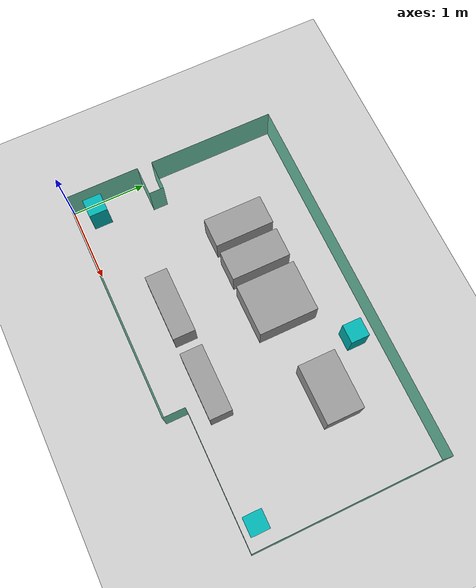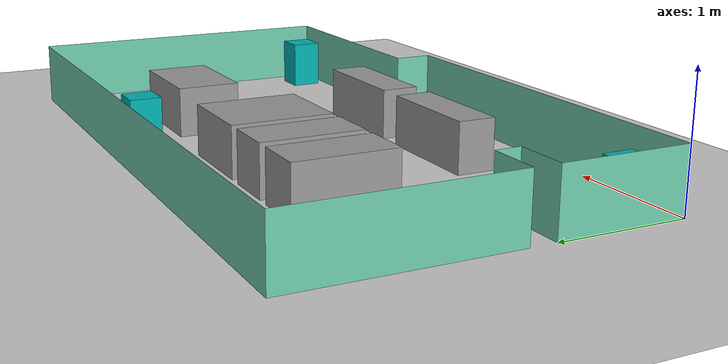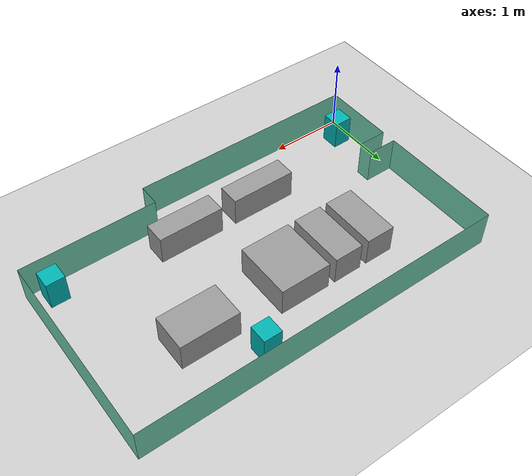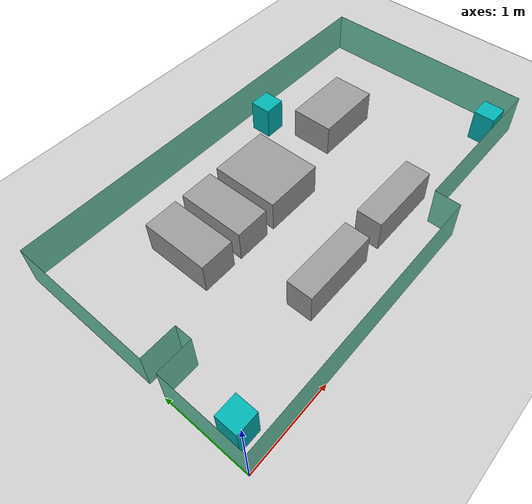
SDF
<sdf version="1.7">
 <world name="default">
  <light name="sun" type="directional">
   <pose>0 0 10 0 -0 0</pose>
   <diffuse>0.8 0.8 0.8 1</diffuse>
   <specular>0.2 0.2 0.2 1</specular>
   <attenuation>
    <range>1000</range>
    <constant>0.9</constant>
    <linear>0.01</linear>
    <quadratic>0.001</quadratic>
   </attenuation>
   <direction>-0.5 0.1 -0.9</direction>
   <spot><inner_angle>0</inner_angle><outer_angle>0</outer_angle><falloff>0</falloff></spot>
  </light>
  <model name="ground_plane">
   <static>1</static>
   <link name="link">
    <collision name="collision">
     <geometry><plane><normal>0 0 1</normal><size>100 100</size></plane></geometry>
     <surface>
      <contact><collide_bitmask>65535</collide_bitmask></contact>
      <friction><ode><mu>100</mu><mu2>50</mu2></ode></friction>
     </surface>
    </collision>
    <visual name="visual">
     <cast_shadows>0</cast_shadows>
     <geometry><plane><normal>0 0 1</normal><size>100 100</size></plane></geometry>
     <material>
      <script><uri>file://media/materials/scripts/gazebo.material</uri><name>Gazebo/Grey</name></script>
     </material>
    </visual>
   </link>
  </model>
  <gravity>0 0 -9.8</gravity>
  <magnetic_field>6e-06 2.3e-05 -4.2e-05</magnetic_field>
  <atmosphere type="adiabatic"/>
  <physics type="ode">
   <max_step_size>0.001</max_step_size>
   <real_time_factor>1</real_time_factor>
   <real_time_update_rate>1000</real_time_update_rate>
  </physics>
  <scene><ambient>0.4 0.4 0.4 1</ambient><background>0.7 0.7 0.7 1</background><shadows>1</shadows></scene>
  <spherical_coordinates>
   <surface_model>EARTH_WGS84</surface_model>
   <latitude_deg>0</latitude_deg>
   <longitude_deg>0</longitude_deg>
   <elevation>0</elevation>
   <heading_deg>0</heading_deg>
  </spherical_coordinates>
  <model name="model_build_fin4">
   <pose>2.5 1.45 0 0 -0 0</pose>
   <link name="Wall_0">
    <collision name="Wall_0_Collision">
     <geometry><box><size>3.15 0 0.5</size></box></geometry>
     <pose>0 0 0.25 0 -0 0</pose>
    </collision>
    <visual name="Wall_0_Visual">
     <pose>0 0 0.25 0 -0 0</pose>
     <geometry><box><size>3.15 0 0.5</size></box></geometry>
     <material>
      <script><uri>file://media/materials/scripts/gazebo.material</uri><name>Gazebo/Grey</name></script>
      <ambient>0.435294 0.796078 0.67451 1</ambient>
     </material>
     <meta><layer>0</layer></meta>
    </visual>
    <pose>-0.925 -1.45 0 0 -0 0</pose>
   </link>
   <link name="Wall_1">
    <collision name="Wall_1_Collision">
     <geometry><box><size>0.3 0 0.5</size></box></geometry>
     <pose>0 0 0.25 0 -0 0</pose>
    </collision>
    <visual name="Wall_1_Visual">
     <pose>0 0 0.25 0 -0 0</pose>
     <geometry><box><size>0.3 0 0.5</size></box></geometry>
     <material>
      <script><uri>file://media/materials/scripts/gazebo.material</uri><name>Gazebo/Grey</name></script>
      <ambient>0.435294 0.796078 0.67451 1</ambient>
     </material>
     <meta><layer>0</layer></meta>
    </visual>
    <pose>0.65 -1.3 0 0 -0 1.5708</pose>
   </link>
   <link name="Wall_2">
    <collision name="Wall_2_Collision">
     <geometry><box><size>1.85 0 0.5</size></box></geometry>
     <pose>0 0 0.25 0 -0 0</pose>
    </collision>
    <visual name="Wall_2_Visual">
     <pose>0 0 0.25 0 -0 0</pose>
     <geometry><box><size>1.85 0 0.5</size></box></geometry>
     <material>
      <script><uri>file://media/materials/scripts/gazebo.material</uri><name>Gazebo/Grey</name></script>
      <ambient>0.435294 0.796078 0.67451 1</ambient>
     </material>
     <meta><layer>0</layer></meta>
    </visual>
    <pose>1.575 -1.15 0 0 -0 0</pose>
   </link>
   <link name="Wall_3">
    <collision name="Wall_3_Collision">
     <geometry><box><size>2.6 0 0.5</size></box></geometry>
     <pose>0 0 0.25 0 -0 0</pose>
    </collision>
    <visual name="Wall_3_Visual">
     <pose>0 0 0.25 0 -0 0</pose>
     <geometry><box><size>2.6 0 0.5</size></box></geometry>
     <material>
      <script><uri>file://media/materials/scripts/gazebo.material</uri><name>Gazebo/Grey</name></script>
      <ambient>0.435294 0.796078 0.67451 1</ambient>
     </material>
     <meta><layer>0</layer></meta>
    </visual>
    <pose>2.5 0.15 0 0 -0 1.5708</pose>
   </link>
   <link name="Wall_4">
    <collision name="Wall_4_Collision">
     <geometry><box><size>5 0 0.5</size></box></geometry>
     <pose>0 0 0.25 0 -0 0</pose>
    </collision>
    <visual name="Wall_4_Visual">
     <pose>0 0 0.25 0 -0 0</pose>
     <geometry><box><size>5 0 0.5</size></box></geometry>
     <material>
      <script><uri>file://media/materials/scripts/gazebo.material</uri><name>Gazebo/Grey</name></script>
      <ambient>0.435294 0.796078 0.67451 1</ambient>
     </material>
     <meta><layer>0</layer></meta>
    </visual>
    <pose>0 1.45 0 0 -0 3.14159</pose>
   </link>
   <link name="Wall_5">
    <collision name="Wall_5_Collision">
     <geometry><box><size>1.7 0 0.5</size></box></geometry>
     <pose>0 0 0.25 0 -0 0</pose>
    </collision>
    <visual name="Wall_5_Visual">
     <pose>0 0 0.25 0 -0 0</pose>
     <geometry><box><size>1.7 0 0.5</size></box></geometry>
     <material>
      <script><uri>file://media/materials/scripts/gazebo.material</uri><name>Gazebo/Grey</name></script>
      <ambient>0.435294 0.796078 0.67451 1</ambient>
     </material>
     <meta><layer>0</layer></meta>
    </visual>
    <pose>-2.5 0.6 0 0 -0 -1.5708</pose>
   </link>
   <link name="Wall_6">
    <collision name="Wall_6_Collision">
     <geometry><box><size>0.4 0 0.5</size></box></geometry>
     <pose>0 0 0.25 0 -0 0</pose>
    </collision>
    <visual name="Wall_6_Visual">
     <pose>0 0 0.25 0 -0 0</pose>
     <geometry><box><size>0.4 0 0.5</size></box></geometry>
     <material>
      <script><uri>file://media/materials/scripts/gazebo.material</uri><name>Gazebo/Grey</name></script>
      <ambient>0.435294 0.796078 0.67451 1</ambient>
     </material>
     <meta><layer>0</layer></meta>
    </visual>
    <pose>-2.3 -0.25 0 0 -0 0</pose>
   </link>
   <link name="Wall_7">
    <collision name="Wall_7_Collision">
     <geometry><box><size>0.2 0 0.5</size></box></geometry>
     <pose>0 0 0.25 0 -0 0</pose>
    </collision>
    <visual name="Wall_7_Visual">
     <pose>0 0 0.25 0 -0 0</pose>
     <geometry><box><size>0.2 0 0.5</size></box></geometry>
     <material>
      <script><uri>file://media/materials/scripts/gazebo.material</uri><name>Gazebo/Grey</name></script>
      <ambient>0.435294 0.796078 0.67451 1</ambient>
     </material>
     <meta><layer>0</layer></meta>
    </visual>
    <pose>-2.1 -0.35 0 0 -0 -1.5708</pose>
   </link>
   <link name="Wall_8">
    <collision name="Wall_8_Collision">
     <geometry><box><size>0.4 0 0.5</size></box></geometry>
     <pose>0 0 0.25 0 -0 0</pose>
    </collision>
    <visual name="Wall_8_Visual">
     <pose>0 0 0.25 0 -0 0</pose>
     <geometry><box><size>0.4 0 0.5</size></box></geometry>
     <material>
      <script><uri>file://media/materials/scripts/gazebo.material</uri><name>Gazebo/Grey</name></script>
      <ambient>0.435294 0.796078 0.67451 1</ambient>
     </material>
     <meta><layer>0</layer></meta>
    </visual>
    <pose>-2.3 -0.45 0 0 -0 3.14159</pose>
   </link>
   <link name="Wall_9">
    <collision name="Wall_9_Collision">
     <geometry><box><size>1 0 0.5</size></box></geometry>
     <pose>0 0 0.25 0 -0 0</pose>
    </collision>
    <visual name="Wall_9_Visual">
     <pose>0 0 0.25 0 -0 0</pose>
     <geometry><box><size>1 0 0.5</size></box></geometry>
     <material>
      <script><uri>file://media/materials/scripts/gazebo.material</uri><name>Gazebo/Grey</name></script>
      <ambient>0.435294 0.796078 0.67451 1</ambient>
     </material>
     <meta><layer>0</layer></meta>
    </visual>
    <pose>-2.5 -0.95 0 0 -0 -1.5708</pose>
   </link>
   <static>1</static>
  </model>
  <model name="model_fin4">
   <link name="link_0">
    <inertial>
     <mass>1</mass>
     <inertia>
      <ixx>0.166667</ixx>
      <ixy>0</ixy>
      <ixz>0</ixz>
      <iyy>0.166667</iyy>
      <iyz>0</iyz>
      <izz>0.166667</izz>
     </inertia>
    </inertial>
    <pose>-1.21667 0.522222 0 0 -0 0</pose>
    <visual name="visual">
     <geometry><box><size>0.4 0.8 0.4</size></box></geometry>
     <material>
      <lighting>1</lighting>
      <script><uri>file://media/materials/scripts/gazebo.material</uri><name>Gazebo/Grey</name></script>
      <shader type="pixel"><normal_map>__default__</normal_map></shader>
      <ambient>0.3 0.3 0.3 1</ambient>
      <diffuse>0.7 0.7 0.7 1</diffuse>
      <specular>0.01 0.01 0.01 1</specular>
      <emissive>0 0 0 1</emissive>
     </material>
    </visual>
    <collision name="collision">
     <geometry><box><size>0.4 0.8 0.4</size></box></geometry>
     <surface>
      <friction>
       <ode><mu>1</mu><mu2>1</mu2><fdir1>0 0 0</fdir1><slip1>0</slip1><slip2>0</slip2></ode>
       <torsional>
        <coefficient>1</coefficient>
        <patch_radius>0</patch_radius>
        <surface_radius>0</surface_radius>
        <use_patch_radius>1</use_patch_radius>
        <ode><slip>0</slip></ode>
       </torsional>
      </friction>
      <bounce><restitution_coefficient>0</restitution_coefficient><threshold>1e+06</threshold></bounce>
      <contact>
       <collide_without_contact>0</collide_without_contact>
       <collide_without_contact_bitmask>1</collide_without_contact_bitmask>
       <collide_bitmask>1</collide_bitmask>
       <ode>
        <soft_cfm>0</soft_cfm>
        <soft_erp>0.2</soft_erp>
        <kp>1e+13</kp>
        <kd>1</kd>
        <max_vel>0.01</max_vel>
        <min_depth>0</min_depth>
       </ode>
       <bullet>
        <split_impulse>1</split_impulse>
        <split_impulse_penetration_threshold>-0.01</split_impulse_penetration_threshold>
        <soft_cfm>0</soft_cfm>
        <soft_erp>0.2</soft_erp>
        <kp>1e+13</kp>
        <kd>1</kd>
       </bullet>
      </contact>
     </surface>
    </collision>
   </link>
   <link name="link_0_clone">
    <inertial>
     <mass>1</mass>
     <inertia>
      <ixx>0.166667</ixx>
      <ixy>0</ixy>
      <ixz>0</ixz>
      <iyy>0.166667</iyy>
      <iyz>0</iyz>
      <izz>0.166667</izz>
     </inertia>
    </inertial>
    <pose>-0.716667 0.522222 0 0 -0 0</pose>
    <visual name="visual">
     <geometry><box><size>0.4 0.8 0.4</size></box></geometry>
     <material>
      <lighting>1</lighting>
      <script><uri>file://media/materials/scripts/gazebo.material</uri><name>Gazebo/Grey</name></script>
      <shader type="pixel"><normal_map>__default__</normal_map></shader>
      <ambient>0.3 0.3 0.3 1</ambient>
      <diffuse>0.7 0.7 0.7 1</diffuse>
      <specular>0.01 0.01 0.01 1</specular>
      <emissive>0 0 0 1</emissive>
     </material>
    </visual>
    <collision name="collision">
     <geometry><box><size>0.4 0.8 0.4</size></box></geometry>
     <surface>
      <friction>
       <ode><mu>1</mu><mu2>1</mu2><fdir1>0 0 0</fdir1><slip1>0</slip1><slip2>0</slip2></ode>
       <torsional>
        <coefficient>1</coefficient>
        <patch_radius>0</patch_radius>
        <surface_radius>0</surface_radius>
        <use_patch_radius>1</use_patch_radius>
        <ode><slip>0</slip></ode>
       </torsional>
      </friction>
      <bounce><restitution_coefficient>0</restitution_coefficient><threshold>1e+06</threshold></bounce>
      <contact>
       <collide_without_contact>0</collide_without_contact>
       <collide_without_contact_bitmask>1</collide_without_contact_bitmask>
       <collide_bitmask>1</collide_bitmask>
       <ode>
        <soft_cfm>0</soft_cfm>
        <soft_erp>0.2</soft_erp>
        <kp>1e+13</kp>
        <kd>1</kd>
        <max_vel>0.01</max_vel>
        <min_depth>0</min_depth>
       </ode>
       <bullet>
        <split_impulse>1</split_impulse>
        <split_impulse_penetration_threshold>-0.01</split_impulse_penetration_threshold>
        <soft_cfm>0</soft_cfm>
        <soft_erp>0.2</soft_erp>
        <kp>1e+13</kp>
        <kd>1</kd>
       </bullet>
      </contact>
     </surface>
    </collision>
   </link>
   <link name="link_0_clone_0">
    <inertial>
     <mass>1</mass>
     <inertia>
      <ixx>0.166667</ixx>
      <ixy>0</ixy>
      <ixz>0</ixz>
      <iyy>0.166667</iyy>
      <iyz>0</iyz>
      <izz>0.166667</izz>
     </inertia>
    </inertial>
    <pose>-0.066667 0.522222 0 0 -0 0</pose>
    <visual name="visual">
     <geometry><box><size>0.7 0.8 0.4</size></box></geometry>
     <material>
      <lighting>1</lighting>
      <script><uri>file://media/materials/scripts/gazebo.material</uri><name>Gazebo/Grey</name></script>
      <shader type="pixel"><normal_map>__default__</normal_map></shader>
      <ambient>0.3 0.3 0.3 1</ambient>
      <diffuse>0.7 0.7 0.7 1</diffuse>
      <specular>0.01 0.01 0.01 1</specular>
      <emissive>0 0 0 1</emissive>
     </material>
    </visual>
    <collision name="collision">
     <geometry><box><size>0.7 0.8 0.4</size></box></geometry>
     <surface>
      <friction>
       <ode><mu>1</mu><mu2>1</mu2><fdir1>0 0 0</fdir1><slip1>0</slip1><slip2>0</slip2></ode>
       <torsional>
        <coefficient>1</coefficient>
        <patch_radius>0</patch_radius>
        <surface_radius>0</surface_radius>
        <use_patch_radius>1</use_patch_radius>
        <ode><slip>0</slip></ode>
       </torsional>
      </friction>
      <bounce><restitution_coefficient>0</restitution_coefficient><threshold>1e+06</threshold></bounce>
      <contact>
       <collide_without_contact>0</collide_without_contact>
       <collide_without_contact_bitmask>1</collide_without_contact_bitmask>
       <collide_bitmask>1</collide_bitmask>
       <ode>
        <soft_cfm>0</soft_cfm>
        <soft_erp>0.2</soft_erp>
        <kp>1e+13</kp>
        <kd>1</kd>
        <max_vel>0.01</max_vel>
        <min_depth>0</min_depth>
       </ode>
       <bullet>
        <split_impulse>1</split_impulse>
        <split_impulse_penetration_threshold>-0.01</split_impulse_penetration_threshold>
        <soft_cfm>0</soft_cfm>
        <soft_erp>0.2</soft_erp>
        <kp>1e+13</kp>
        <kd>1</kd>
       </bullet>
      </contact>
     </surface>
    </collision>
   </link>
   <link name="link_0_clone_clone">
    <inertial>
     <mass>1</mass>
     <inertia>
      <ixx>0.166667</ixx>
      <ixy>0</ixy>
      <ixz>0</ixz>
      <iyy>0.166667</iyy>
      <iyz>0</iyz>
      <izz>0.166667</izz>
     </inertia>
    </inertial>
    <pose>1.23333 0.622222 0 0 -0 0</pose>
    <visual name="visual">
     <geometry><box><size>0.8 0.5 0.4</size></box></geometry>
     <material>
      <lighting>1</lighting>
      <script><uri>file://media/materials/scripts/gazebo.material</uri><name>Gazebo/Grey</name></script>
      <shader type="pixel"><normal_map>__default__</normal_map></shader>
      <ambient>0.3 0.3 0.3 1</ambient>
      <diffuse>0.7 0.7 0.7 1</diffuse>
      <specular>0.01 0.01 0.01 1</specular>
      <emissive>0 0 0 1</emissive>
     </material>
    </visual>
    <collision name="collision">
     <geometry><box><size>0.8 0.5 0.4</size></box></geometry>
     <surface>
      <friction>
       <ode><mu>1</mu><mu2>1</mu2><fdir1>0 0 0</fdir1><slip1>0</slip1><slip2>0</slip2></ode>
       <torsional>
        <coefficient>1</coefficient>
        <patch_radius>0</patch_radius>
        <surface_radius>0</surface_radius>
        <use_patch_radius>1</use_patch_radius>
        <ode><slip>0</slip></ode>
       </torsional>
      </friction>
      <bounce><restitution_coefficient>0</restitution_coefficient><threshold>1e+06</threshold></bounce>
      <contact>
       <collide_without_contact>0</collide_without_contact>
       <collide_without_contact_bitmask>1</collide_without_contact_bitmask>
       <collide_bitmask>1</collide_bitmask>
       <ode>
        <soft_cfm>0</soft_cfm>
        <soft_erp>0.2</soft_erp>
        <kp>1e+13</kp>
        <kd>1</kd>
        <max_vel>0.01</max_vel>
        <min_depth>0</min_depth>
       </ode>
       <bullet>
        <split_impulse>1</split_impulse>
        <split_impulse_penetration_threshold>-0.01</split_impulse_penetration_threshold>
        <soft_cfm>0</soft_cfm>
        <soft_erp>0.2</soft_erp>
        <kp>1e+13</kp>
        <kd>1</kd>
       </bullet>
      </contact>
     </surface>
    </collision>
   </link>
   <link name="link_0_clone_clone_clone">
    <inertial>
     <mass>1</mass>
     <inertia>
      <ixx>0.166667</ixx>
      <ixy>0</ixy>
      <ixz>0</ixz>
      <iyy>0.166667</iyy>
      <iyz>0</iyz>
      <izz>0.166667</izz>
     </inertia>
    </inertial>
    <pose>-0.566667 -0.727778 0 0 -0 0</pose>
    <visual name="visual">
     <geometry><box><size>0.9 0.3 0.4</size></box></geometry>
     <material>
      <lighting>1</lighting>
      <script><uri>file://media/materials/scripts/gazebo.material</uri><name>Gazebo/Grey</name></script>
      <shader type="pixel"><normal_map>__default__</normal_map></shader>
      <ambient>0.3 0.3 0.3 1</ambient>
      <diffuse>0.7 0.7 0.7 1</diffuse>
      <specular>0.01 0.01 0.01 1</specular>
      <emissive>0 0 0 1</emissive>
     </material>
    </visual>
    <collision name="collision">
     <geometry><box><size>0.9 0.3 0.4</size></box></geometry>
     <surface>
      <friction>
       <ode><mu>1</mu><mu2>1</mu2><fdir1>0 0 0</fdir1><slip1>0</slip1><slip2>0</slip2></ode>
       <torsional>
        <coefficient>1</coefficient>
        <patch_radius>0</patch_radius>
        <surface_radius>0</surface_radius>
        <use_patch_radius>1</use_patch_radius>
        <ode><slip>0</slip></ode>
       </torsional>
      </friction>
      <bounce><restitution_coefficient>0</restitution_coefficient><threshold>1e+06</threshold></bounce>
      <contact>
       <collide_without_contact>0</collide_without_contact>
       <collide_without_contact_bitmask>1</collide_without_contact_bitmask>
       <collide_bitmask>1</collide_bitmask>
       <ode>
        <soft_cfm>0</soft_cfm>
        <soft_erp>0.2</soft_erp>
        <kp>1e+13</kp>
        <kd>1</kd>
        <max_vel>0.01</max_vel>
        <min_depth>0</min_depth>
       </ode>
       <bullet>
        <split_impulse>1</split_impulse>
        <split_impulse_penetration_threshold>-0.01</split_impulse_penetration_threshold>
        <soft_cfm>0</soft_cfm>
        <soft_erp>0.2</soft_erp>
        <kp>1e+13</kp>
        <kd>1</kd>
       </bullet>
      </contact>
     </surface>
    </collision>
   </link>
   <link name="link_0_clone_clone_clone_clone">
    <inertial>
     <mass>1</mass>
     <inertia>
      <ixx>0.166667</ixx>
      <ixy>0</ixy>
      <ixz>0</ixz>
      <iyy>0.166667</iyy>
      <iyz>0</iyz>
      <izz>0.166667</izz>
     </inertia>
    </inertial>
    <pose>0.533333 -0.727778 0 0 -0 0</pose>
    <visual name="visual">
     <geometry><box><size>0.9 0.3 0.4</size></box></geometry>
     <material>
      <lighting>1</lighting>
      <script><uri>file://media/materials/scripts/gazebo.material</uri><name>Gazebo/Grey</name></script>
      <shader type="pixel"><normal_map>__default__</normal_map></shader>
      <ambient>0.3 0.3 0.3 1</ambient>
      <diffuse>0.7 0.7 0.7 1</diffuse>
      <specular>0.01 0.01 0.01 1</specular>
      <emissive>0 0 0 1</emissive>
     </material>
    </visual>
    <collision name="collision">
     <geometry><box><size>0.9 0.3 0.4</size></box></geometry>
     <surface>
      <friction>
       <ode><mu>1</mu><mu2>1</mu2><fdir1>0 0 0</fdir1><slip1>0</slip1><slip2>0</slip2></ode>
       <torsional>
        <coefficient>1</coefficient>
        <patch_radius>0</patch_radius>
        <surface_radius>0</surface_radius>
        <use_patch_radius>1</use_patch_radius>
        <ode><slip>0</slip></ode>
       </torsional>
      </friction>
      <bounce><restitution_coefficient>0</restitution_coefficient><threshold>1e+06</threshold></bounce>
      <contact>
       <collide_without_contact>0</collide_without_contact>
       <collide_without_contact_bitmask>1</collide_without_contact_bitmask>
       <collide_bitmask>1</collide_bitmask>
       <ode>
        <soft_cfm>0</soft_cfm>
        <soft_erp>0.2</soft_erp>
        <kp>1e+13</kp>
        <kd>1</kd>
        <max_vel>0.01</max_vel>
        <min_depth>0</min_depth>
       </ode>
       <bullet>
        <split_impulse>1</split_impulse>
        <split_impulse_penetration_threshold>-0.01</split_impulse_penetration_threshold>
        <soft_cfm>0</soft_cfm>
        <soft_erp>0.2</soft_erp>
        <kp>1e+13</kp>
        <kd>1</kd>
       </bullet>
      </contact>
     </surface>
    </collision>
   </link>
   <link name="link_0_clone_clone_clone_clone_clone">
    <inertial>
     <mass>1</mass>
     <inertia>
      <ixx>0.166667</ixx>
      <ixy>0</ixy>
      <ixz>0</ixz>
      <iyy>0.166667</iyy>
      <iyz>0</iyz>
      <izz>0.166667</izz>
     </inertia>
    </inertial>
    <pose>2.28333 -0.877778 0 0 -0 0</pose>
    <gravity>0</gravity>
    <visual name="visual">
     <geometry><box><size>0.25 0.25 0.4</size></box></geometry>
     <material>
      <lighting>1</lighting>
      <script><uri>file://media/materials/scripts/gazebo.material</uri><name>Gazebo/Grey</name></script>
      <shader type="pixel"><normal_map>__default__</normal_map></shader>
      <ambient>0 0.3 0.3 1</ambient>
      <diffuse>0 0.7 0.7 1</diffuse>
      <specular>0.01 0.01 0.01 1</specular>
      <emissive>0 0 0 1</emissive>
     </material>
    </visual>
    <collision name="collision">
     <geometry><box><size>0.25 0.25 0.4</size></box></geometry>
     <surface>
      <friction>
       <ode><mu>1</mu><mu2>1</mu2><fdir1>0 0 0</fdir1><slip1>0</slip1><slip2>0</slip2></ode>
       <torsional>
        <coefficient>1</coefficient>
        <patch_radius>0</patch_radius>
        <surface_radius>0</surface_radius>
        <use_patch_radius>1</use_patch_radius>
        <ode><slip>0</slip></ode>
       </torsional>
      </friction>
      <bounce><restitution_coefficient>0</restitution_coefficient><threshold>1e+06</threshold></bounce>
      <contact>
       <collide_without_contact>0</collide_without_contact>
       <collide_without_contact_bitmask>1</collide_without_contact_bitmask>
       <collide_bitmask>0</collide_bitmask>
       <ode>
        <soft_cfm>0</soft_cfm>
        <soft_erp>0.2</soft_erp>
        <kp>1e+13</kp>
        <kd>1</kd>
        <max_vel>0.01</max_vel>
        <min_depth>0</min_depth>
       </ode>
       <bullet>
        <split_impulse>1</split_impulse>
        <split_impulse_penetration_threshold>-0.01</split_impulse_penetration_threshold>
        <soft_cfm>0</soft_cfm>
        <soft_erp>0.2</soft_erp>
        <kp>1e+13</kp>
        <kd>1</kd>
       </bullet>
      </contact>
     </surface>
    </collision>
   </link>
   <link name="link_0_clone_clone_clone_clone_clone_clone">
    <inertial>
     <mass>1</mass>
     <inertia>
      <ixx>0.166667</ixx>
      <ixy>0</ixy>
      <ixz>0</ixz>
      <iyy>0.166667</iyy>
      <iyz>0</iyz>
      <izz>0.166667</izz>
     </inertia>
    </inertial>
    <pose>0.733333 1.22222 0 0 -0 0</pose>
    <gravity>0</gravity>
    <visual name="visual">
     <geometry><box><size>0.25 0.25 0.4</size></box></geometry>
     <material>
      <lighting>1</lighting>
      <script><uri>file://media/materials/scripts/gazebo.material</uri><name>Gazebo/Grey</name></script>
      <shader type="pixel"><normal_map>__default__</normal_map></shader>
      <ambient>0 0.3 0.3 1</ambient>
      <diffuse>0 0.7 0.7 1</diffuse>
      <specular>0.01 0.01 0.01 1</specular>
      <emissive>0 0 0 1</emissive>
     </material>
    </visual>
    <collision name="collision">
     <geometry><box><size>0.25 0.25 0.4</size></box></geometry>
     <surface>
      <friction>
       <ode><mu>1</mu><mu2>1</mu2><fdir1>0 0 0</fdir1><slip1>0</slip1><slip2>0</slip2></ode>
       <torsional>
        <coefficient>1</coefficient>
        <patch_radius>0</patch_radius>
        <surface_radius>0</surface_radius>
        <use_patch_radius>1</use_patch_radius>
        <ode><slip>0</slip></ode>
       </torsional>
      </friction>
      <bounce><restitution_coefficient>0</restitution_coefficient><threshold>1e+06</threshold></bounce>
      <contact>
       <collide_without_contact>0</collide_without_contact>
       <collide_without_contact_bitmask>1</collide_without_contact_bitmask>
       <collide_bitmask>0</collide_bitmask>
       <ode>
        <soft_cfm>0</soft_cfm>
        <soft_erp>0.2</soft_erp>
        <kp>1e+13</kp>
        <kd>1</kd>
        <max_vel>0.01</max_vel>
        <min_depth>0</min_depth>
       </ode>
       <bullet>
        <split_impulse>1</split_impulse>
        <split_impulse_penetration_threshold>-0.01</split_impulse_penetration_threshold>
        <soft_cfm>0</soft_cfm>
        <soft_erp>0.2</soft_erp>
        <kp>1e+13</kp>
        <kd>1</kd>
       </bullet>
      </contact>
     </surface>
    </collision>
   </link>
   <link name="link_0_clone_clone_clone_clone_clone_clone_0">
    <inertial>
     <mass>1</mass>
     <inertia>
      <ixx>0.166667</ixx>
      <ixy>0</ixy>
      <ixz>0</ixz>
      <iyy>0.166667</iyy>
      <iyz>0</iyz>
      <izz>0.166667</izz>
     </inertia>
    </inertial>
    <pose>-2.21667 -1.07778 0 0 -0 0</pose>
    <gravity>0</gravity>
    <visual name="visual">
     <geometry><box><size>0.25 0.25 0.4</size></box></geometry>
     <material>
      <lighting>1</lighting>
      <script><uri>file://media/materials/scripts/gazebo.material</uri><name>Gazebo/Grey</name></script>
      <shader type="pixel"><normal_map>__default__</normal_map></shader>
      <ambient>0 0.3 0.3 1</ambient>
      <diffuse>0 0.7 0.7 1</diffuse>
      <specular>0.01 0.01 0.01 1</specular>
      <emissive>0 0 0 1</emissive>
     </material>
    </visual>
    <collision name="collision">
     <geometry><box><size>0.25 0.25 0.4</size></box></geometry>
     <surface>
      <friction>
       <ode><mu>1</mu><mu2>1</mu2><fdir1>0 0 0</fdir1><slip1>0</slip1><slip2>0</slip2></ode>
       <torsional>
        <coefficient>1</coefficient>
        <patch_radius>0</patch_radius>
        <surface_radius>0</surface_radius>
        <use_patch_radius>1</use_patch_radius>
        <ode><slip>0</slip></ode>
       </torsional>
      </friction>
      <bounce><restitution_coefficient>0</restitution_coefficient><threshold>1e+06</threshold></bounce>
      <contact>
       <collide_without_contact>0</collide_without_contact>
       <collide_without_contact_bitmask>1</collide_without_contact_bitmask>
       <collide_bitmask>0</collide_bitmask>
       <ode>
        <soft_cfm>0</soft_cfm>
        <soft_erp>0.2</soft_erp>
        <kp>1e+13</kp>
        <kd>1</kd>
        <max_vel>0.01</max_vel>
        <min_depth>0</min_depth>
       </ode>
       <bullet>
        <split_impulse>1</split_impulse>
        <split_impulse_penetration_threshold>-0.01</split_impulse_penetration_threshold>
        <soft_cfm>0</soft_cfm>
        <soft_erp>0.2</soft_erp>
        <kp>1e+13</kp>
        <kd>1</kd>
       </bullet>
      </contact>
     </surface>
    </collision>
   </link>
   <static>0</static>
   <pose>2.41667 1.37778 0.2 0 -0 0</pose>
  </model>
 </world>
</sdf>
